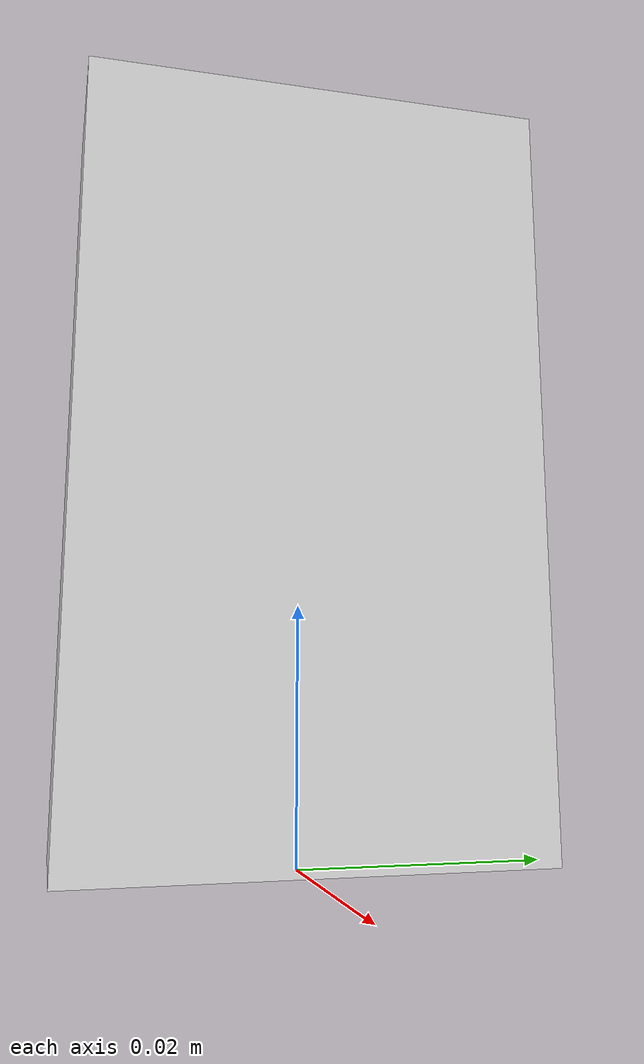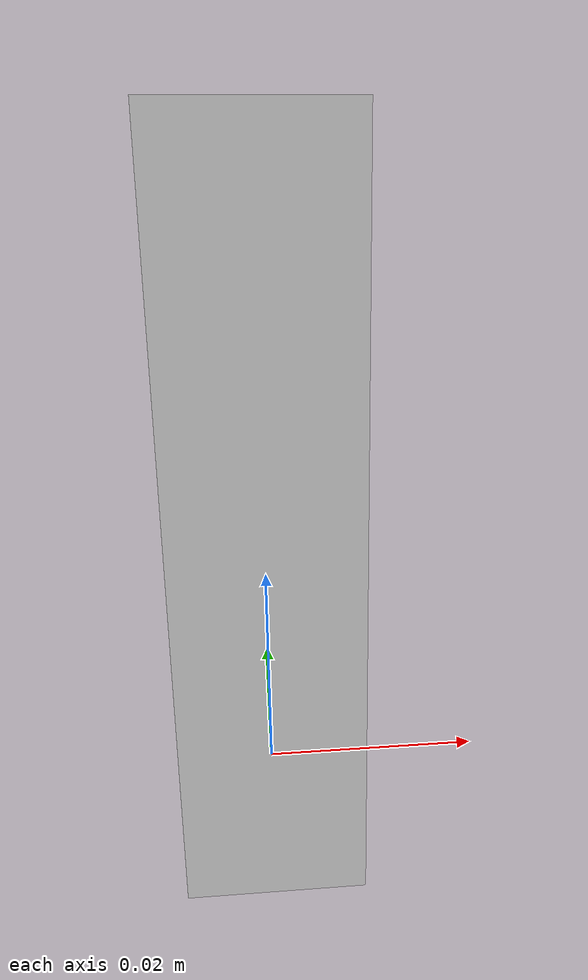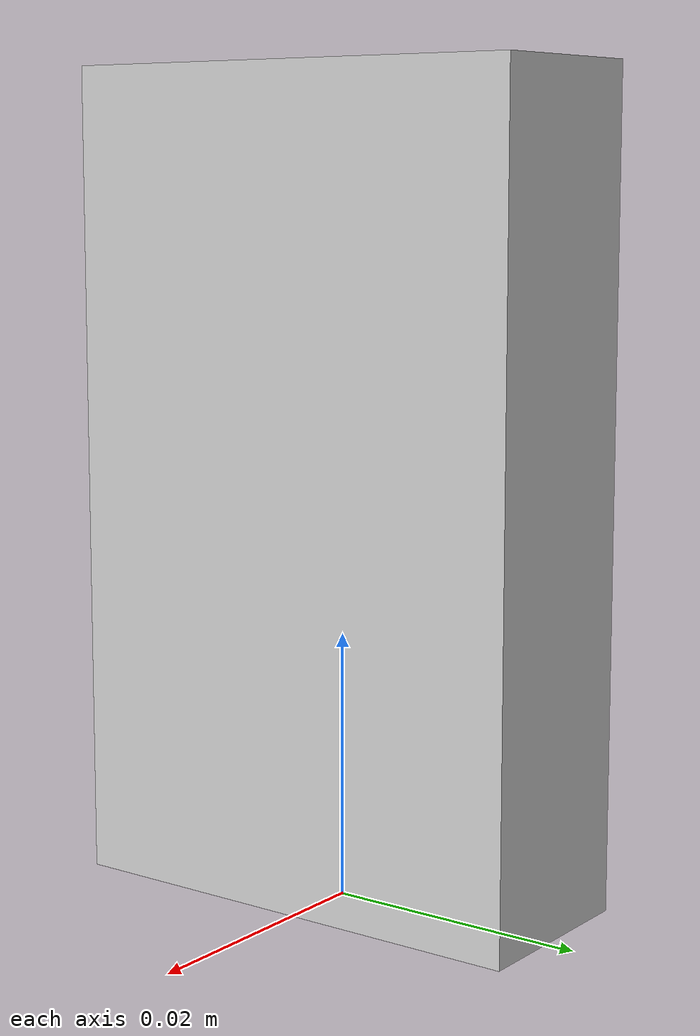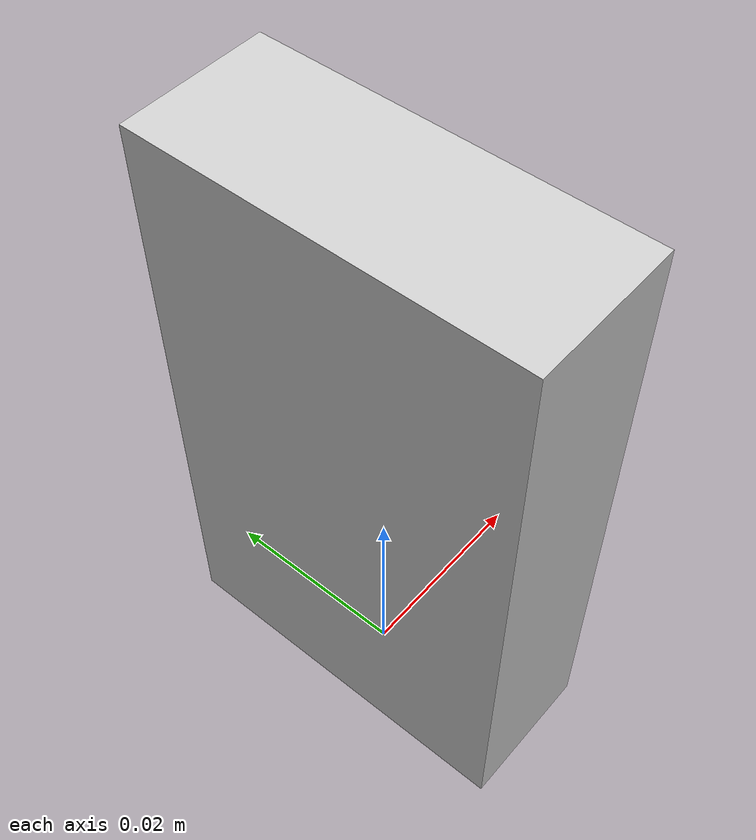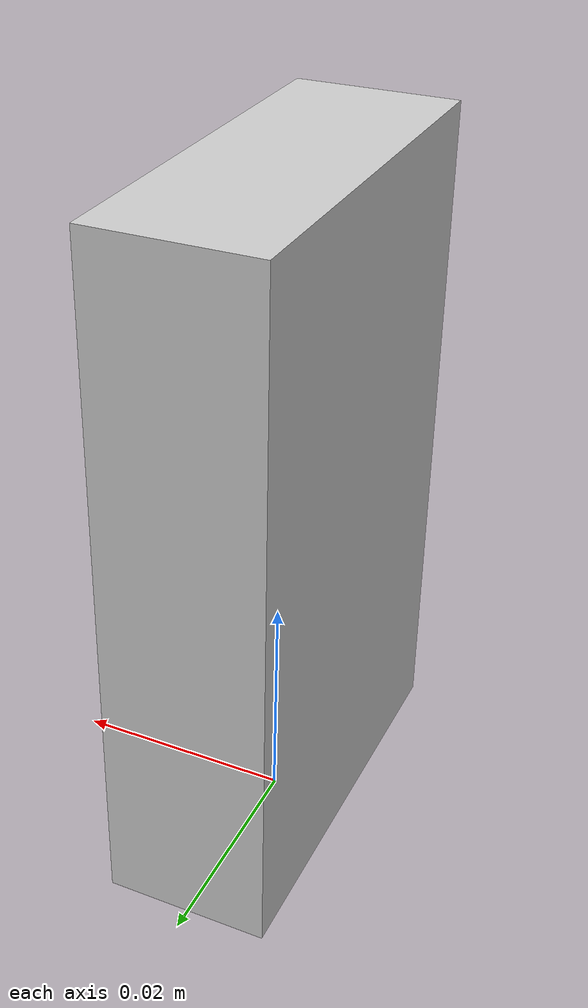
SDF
<?xml version='1.0'?>
<sdf version="1.4">
  <model name="tictac_orange">
    <pose>0 0 0.031 0 0 0</pose>
    <static>true</static>
    <link name="link">
      <inertial>
        <mass>1.0</mass>
        <inertia>
          <ixx>0.000062690315</ixx>
          <ixy>0.0</ixy>
          <ixz>0.0</ixz>
          <iyy>0.00004857326</iyy>
          <iyz>0.0</iyz>
          <izz>0.000018834775</izz>
        </inertia>
      </inertial>
      <collision name="collision">
        <geometry>
          <box>
            <size>0.014 0.037 0.062</size>
          </box>
        </geometry>
      </collision>
      <visual name="visual">
        <pose>0 0 0 0 0 1.5708</pose>
        <geometry>
          <mesh>
            <scale>0.5 0.5 0.5</scale>
            <uri>model://tictac_orange/meshes/tictac_orange.dae</uri>
          </mesh>
        </geometry>
      </visual>
    </link>
  </model>
</sdf>
